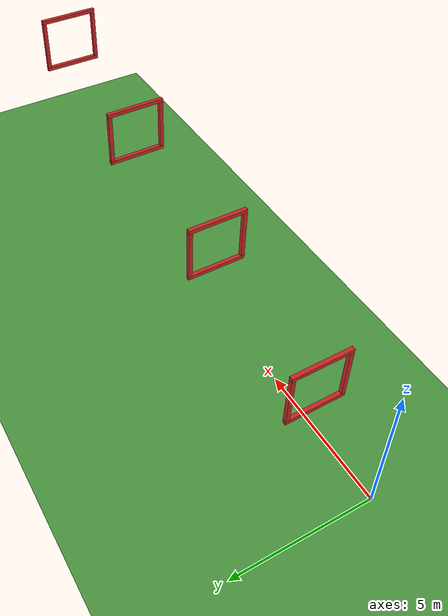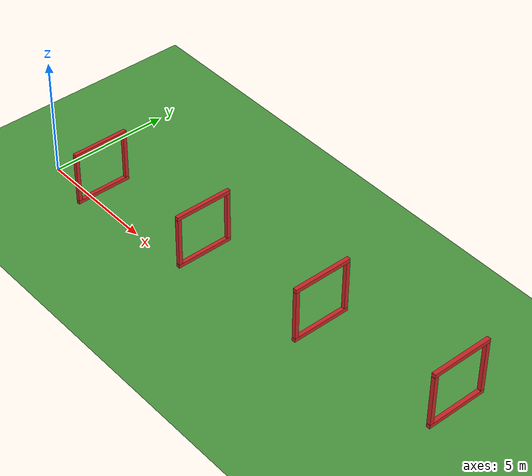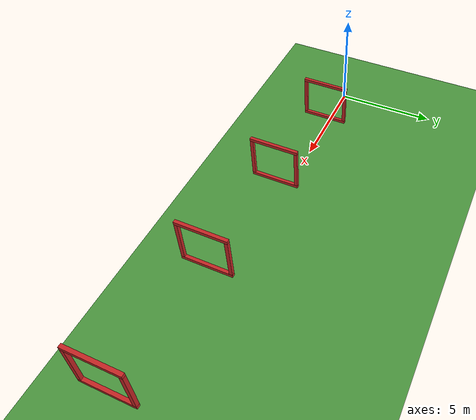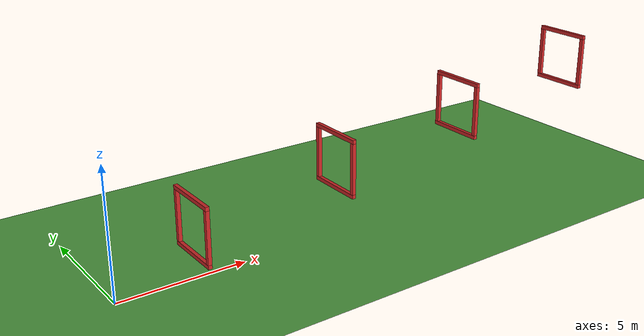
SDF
<?xml version="1.0" ?>
<sdf version="1.6">
  <world name="default">
    <scene>
      <ambient>0.7 0.7 0.7 1</ambient>
      <background>0.7 0.8 0.9 1</background>
      <shadows>true</shadows>
    </scene>
    <gui>
      <camera name="user_camera">
        <pose>-5 0 1 0 0.2 0</pose>
      </camera>
    </gui>
    <physics type="ode">
      <ode>
        <solver>
          <type>quick</type>
          <iters>100</iters>
          <sor>1.0</sor>
        </solver>
        <constraints>
          <cfm>0.0</cfm>
          <erp>0.2</erp>
          <contact_max_correcting_vel>100.0</contact_max_correcting_vel>
          <contact_surface_layer>0.001</contact_surface_layer>
        </constraints>
      </ode>
      <real_time_update_rate>1000</real_time_update_rate>
    </physics>
    <gravity>0 0 -9.8</gravity>
    <include>
      <uri>model://sun</uri>
    </include>

    <model name="ground_plane">
      <static>true</static>
      <link name="link">
        <collision name="collision">
          <geometry>
            <plane>
              <normal>0 0 1</normal>
              <size>100 100</size>
            </plane>
          </geometry>
          <surface>
            <contact>
              <collide_bitmask>0xffff</collide_bitmask>
            </contact>
            <friction>
              <ode>
                <mu>100</mu>
                <mu2>50</mu2>
              </ode>
            </friction>
          </surface>
        </collision>
        <visual name="visual">
          <cast_shadows>false</cast_shadows>
          <geometry>
            <plane>
              <normal>0 0 1</normal>
              <size>100 100</size>
            </plane>
          </geometry>
          <material>
            <script>
              <uri>file://media/materials/scripts/gazebo.material</uri>
              <name>Gazebo/Grass</name>
            </script>
          </material>
        </visual>
      </link>
    </model>

    <model name="aerial_obstacle_course">
      <static>true</static>

      <link name="gate_0_top">
        <pose>3.000000 0.000000 3.075000 0 0 0</pose>
        <collision name="collision">
          <geometry>
            <box><size>0.150000 2.300000 0.150000</size></box>
          </geometry>
        </collision>
        <visual name="visual">
          <geometry>
            <box><size>0.150000 2.300000 0.150000</size></box>
          </geometry>
          <material>
            <script>
              <uri>file://media/materials/scripts/gazebo.material</uri>
              <name>Gazebo/Red</name>
            </script>
          </material>
        </visual>
      </link>

      <link name="gate_0_bottom">
        <pose>3.000000 0.000000 0.925000 0 0 0</pose>
        <collision name="collision">
          <geometry>
            <box><size>0.150000 2.300000 0.150000</size></box>
          </geometry>
        </collision>
        <visual name="visual">
          <geometry>
            <box><size>0.150000 2.300000 0.150000</size></box>
          </geometry>
          <material>
            <script>
              <uri>file://media/materials/scripts/gazebo.material</uri>
              <name>Gazebo/Red</name>
            </script>
          </material>
        </visual>
      </link>

      <link name="gate_0_left">
        <pose>3.000000 1.075000 2.000000 0 0 0</pose>
        <collision name="collision">
          <geometry>
            <box><size>0.150000 0.150000 2.000000</size></box>
          </geometry>
        </collision>
        <visual name="visual">
          <geometry>
            <box><size>0.150000 0.150000 2.000000</size></box>
          </geometry>
          <material>
            <script>
              <uri>file://media/materials/scripts/gazebo.material</uri>
              <name>Gazebo/Red</name>
            </script>
          </material>
        </visual>
      </link>

      <link name="gate_0_right">
        <pose>3.000000 -1.075000 2.000000 0 0 0</pose>
        <collision name="collision">
          <geometry>
            <box><size>0.150000 0.150000 2.000000</size></box>
          </geometry>
        </collision>
        <visual name="visual">
          <geometry>
            <box><size>0.150000 0.150000 2.000000</size></box>
          </geometry>
          <material>
            <script>
              <uri>file://media/materials/scripts/gazebo.material</uri>
              <name>Gazebo/Red</name>
            </script>
          </material>
        </visual>
      </link>

      <link name="gate_1_top">
        <pose>9.000000 0.000000 4.075000 0 0 0</pose>
        <collision name="collision">
          <geometry>
            <box><size>0.150000 2.300000 0.150000</size></box>
          </geometry>
        </collision>
        <visual name="visual">
          <geometry>
            <box><size>0.150000 2.300000 0.150000</size></box>
          </geometry>
          <material>
            <script>
              <uri>file://media/materials/scripts/gazebo.material</uri>
              <name>Gazebo/Red</name>
            </script>
          </material>
        </visual>
      </link>

      <link name="gate_1_bottom">
        <pose>9.000000 0.000000 1.925000 0 0 0</pose>
        <collision name="collision">
          <geometry>
            <box><size>0.150000 2.300000 0.150000</size></box>
          </geometry>
        </collision>
        <visual name="visual">
          <geometry>
            <box><size>0.150000 2.300000 0.150000</size></box>
          </geometry>
          <material>
            <script>
              <uri>file://media/materials/scripts/gazebo.material</uri>
              <name>Gazebo/Red</name>
            </script>
          </material>
        </visual>
      </link>

      <link name="gate_1_left">
        <pose>9.000000 1.075000 3.000000 0 0 0</pose>
        <collision name="collision">
          <geometry>
            <box><size>0.150000 0.150000 2.000000</size></box>
          </geometry>
        </collision>
        <visual name="visual">
          <geometry>
            <box><size>0.150000 0.150000 2.000000</size></box>
          </geometry>
          <material>
            <script>
              <uri>file://media/materials/scripts/gazebo.material</uri>
              <name>Gazebo/Red</name>
            </script>
          </material>
        </visual>
      </link>

      <link name="gate_1_right">
        <pose>9.000000 -1.075000 3.000000 0 0 0</pose>
        <collision name="collision">
          <geometry>
            <box><size>0.150000 0.150000 2.000000</size></box>
          </geometry>
        </collision>
        <visual name="visual">
          <geometry>
            <box><size>0.150000 0.150000 2.000000</size></box>
          </geometry>
          <material>
            <script>
              <uri>file://media/materials/scripts/gazebo.material</uri>
              <name>Gazebo/Red</name>
            </script>
          </material>
        </visual>
      </link>

      <link name="gate_2_top">
        <pose>15.000000 0.000000 5.075000 0 0 0</pose>
        <collision name="collision">
          <geometry>
            <box><size>0.150000 2.300000 0.150000</size></box>
          </geometry>
        </collision>
        <visual name="visual">
          <geometry>
            <box><size>0.150000 2.300000 0.150000</size></box>
          </geometry>
          <material>
            <script>
              <uri>file://media/materials/scripts/gazebo.material</uri>
              <name>Gazebo/Red</name>
            </script>
          </material>
        </visual>
      </link>

      <link name="gate_2_bottom">
        <pose>15.000000 0.000000 2.925000 0 0 0</pose>
        <collision name="collision">
          <geometry>
            <box><size>0.150000 2.300000 0.150000</size></box>
          </geometry>
        </collision>
        <visual name="visual">
          <geometry>
            <box><size>0.150000 2.300000 0.150000</size></box>
          </geometry>
          <material>
            <script>
              <uri>file://media/materials/scripts/gazebo.material</uri>
              <name>Gazebo/Red</name>
            </script>
          </material>
        </visual>
      </link>

      <link name="gate_2_left">
        <pose>15.000000 1.075000 4.000000 0 0 0</pose>
        <collision name="collision">
          <geometry>
            <box><size>0.150000 0.150000 2.000000</size></box>
          </geometry>
        </collision>
        <visual name="visual">
          <geometry>
            <box><size>0.150000 0.150000 2.000000</size></box>
          </geometry>
          <material>
            <script>
              <uri>file://media/materials/scripts/gazebo.material</uri>
              <name>Gazebo/Red</name>
            </script>
          </material>
        </visual>
      </link>

      <link name="gate_2_right">
        <pose>15.000000 -1.075000 4.000000 0 0 0</pose>
        <collision name="collision">
          <geometry>
            <box><size>0.150000 0.150000 2.000000</size></box>
          </geometry>
        </collision>
        <visual name="visual">
          <geometry>
            <box><size>0.150000 0.150000 2.000000</size></box>
          </geometry>
          <material>
            <script>
              <uri>file://media/materials/scripts/gazebo.material</uri>
              <name>Gazebo/Red</name>
            </script>
          </material>
        </visual>
      </link>

      <link name="gate_3_top">
        <pose>21.000000 0.000000 6.075000 0 0 0</pose>
        <collision name="collision">
          <geometry>
            <box><size>0.150000 2.300000 0.150000</size></box>
          </geometry>
        </collision>
        <visual name="visual">
          <geometry>
            <box><size>0.150000 2.300000 0.150000</size></box>
          </geometry>
          <material>
            <script>
              <uri>file://media/materials/scripts/gazebo.material</uri>
              <name>Gazebo/Red</name>
            </script>
          </material>
        </visual>
      </link>

      <link name="gate_3_bottom">
        <pose>21.000000 0.000000 3.925000 0 0 0</pose>
        <collision name="collision">
          <geometry>
            <box><size>0.150000 2.300000 0.150000</size></box>
          </geometry>
        </collision>
        <visual name="visual">
          <geometry>
            <box><size>0.150000 2.300000 0.150000</size></box>
          </geometry>
          <material>
            <script>
              <uri>file://media/materials/scripts/gazebo.material</uri>
              <name>Gazebo/Red</name>
            </script>
          </material>
        </visual>
      </link>

      <link name="gate_3_left">
        <pose>21.000000 1.075000 5.000000 0 0 0</pose>
        <collision name="collision">
          <geometry>
            <box><size>0.150000 0.150000 2.000000</size></box>
          </geometry>
        </collision>
        <visual name="visual">
          <geometry>
            <box><size>0.150000 0.150000 2.000000</size></box>
          </geometry>
          <material>
            <script>
              <uri>file://media/materials/scripts/gazebo.material</uri>
              <name>Gazebo/Red</name>
            </script>
          </material>
        </visual>
      </link>

      <link name="gate_3_right">
        <pose>21.000000 -1.075000 5.000000 0 0 0</pose>
        <collision name="collision">
          <geometry>
            <box><size>0.150000 0.150000 2.000000</size></box>
          </geometry>
        </collision>
        <visual name="visual">
          <geometry>
            <box><size>0.150000 0.150000 2.000000</size></box>
          </geometry>
          <material>
            <script>
              <uri>file://media/materials/scripts/gazebo.material</uri>
              <name>Gazebo/Red</name>
            </script>
          </material>
        </visual>
      </link>

    </model>
  </world>
</sdf>
